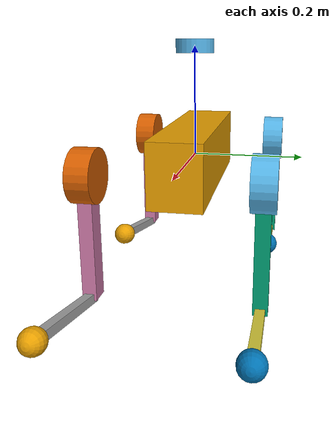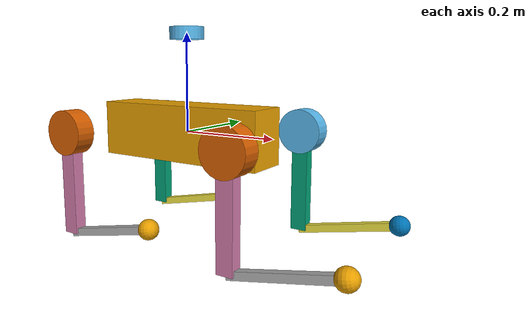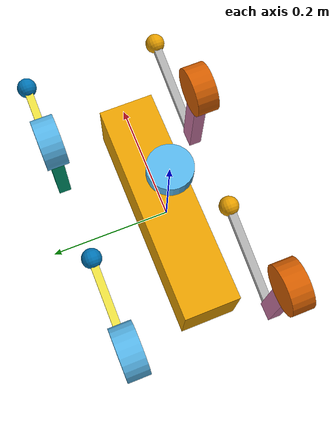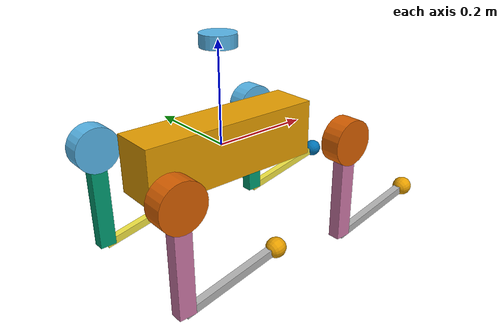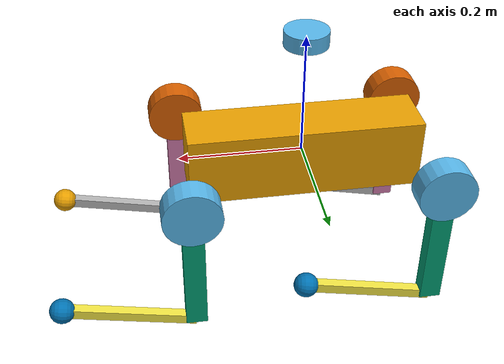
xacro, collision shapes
<?xml version="1.0"?>
<robot name="go2" xmlns:xacro="http://www.ros.org/wiki/xacro">

    <xacro:include filename="$(find unitree_description)/urdf/const.xacro"/>
    <xacro:include filename="$(find unitree_description)/urdf/leg.xacro"/>
    <xacro:include filename="$(find unitree_description)/urdf/lidar.xacro"/>

    <link name="trunk">
        <visual>
            <geometry>
                <mesh
                    filename="package://unitree_description/meshes/trunk.dae"
                    scale="1 1 1"/>
            </geometry>
        </visual>

        <collision>
            <geometry>
                <box size="${trunk_length} ${trunk_width} ${trunk_height}"/>
            </geometry>
        </collision>

        <inertial>
            <origin xyz="0.021112 0.0 -0.005366" rpy="0 0 0"/>
            <mass value="${trunk_mass}"/>
            <inertia
                ixx="0.02448"
                ixy="0.00012166"
                ixz="0.0014849"
                iyy="0.098077"
                iyz="-3.12E-05"
                izz="0.107"/>
        </inertial>
    </link>

    <xacro:leg name="FL" mirror="1" front_hind="1"/>
    <xacro:leg name="FR" mirror="-1" front_hind="1"/>
    <xacro:leg name="RL" mirror="1" front_hind="-1"/>
    <xacro:leg name="RR" mirror="-1" front_hind="-1"/>

    <xacro:lidar_sensor/>
    <ros2_control name="Go2System" type="system">
        <hardware>
            <plugin>gz_ros2_control/GazeboSimSystem</plugin>
        </hardware>

        <joint name="FL_hip_joint">
            <command_interface name="position"/>
            <state_interface name="position"/>
        </joint>
        <joint name="FL_upper_leg_joint">
            <command_interface name="position"/>
            <state_interface name="position"/>
        </joint>
        <joint name="FL_lower_leg_joint">
            <command_interface name="position"/>
            <state_interface name="position"/>
        </joint>

        <joint name="FR_hip_joint">
            <command_interface name="position"/>
            <state_interface name="position"/>
        </joint>
        <joint name="FR_upper_leg_joint">
            <command_interface name="position"/>
            <state_interface name="position"/>
        </joint>
        <joint name="FR_lower_leg_joint">
            <command_interface name="position"/>
            <state_interface name="position"/>
        </joint>

        <joint name="RL_hip_joint">
            <command_interface name="position"/>
            <state_interface name="position"/>
        </joint>
        <joint name="RL_upper_leg_joint">
            <command_interface name="position"/>
            <state_interface name="position"/>
        </joint>
        <joint name="RL_lower_leg_joint">
            <command_interface name="position"/>
            <state_interface name="position"/>
        </joint>

        <joint name="RR_hip_joint">
            <command_interface name="position"/>
            <state_interface name="position"/>
        </joint>
        <joint name="RR_upper_leg_joint">
            <command_interface name="position"/>
            <state_interface name="position"/>
        </joint>
        <joint name="RR_lower_leg_joint">
            <command_interface name="position"/>
            <state_interface name="position"/>
        </joint>
    </ros2_control>
<gazebo>
    <plugin filename="libgz_ros2_control-system.so"
            name="gz_ros2_control::GazeboSimROS2ControlPlugin">
        <parameters>$(find unitree_description)/config/controllers.yaml</parameters>
    </plugin>
</gazebo>
<gazebo>
    <plugin filename="gz-sim-odometry-publisher-system"
            name="gz::sim::systems::OdometryPublisher">
        <odom_frame>odom</odom_frame>
        <robot_base_frame>trunk</robot_base_frame>
        <odom_publish_frequency>30</odom_publish_frequency>
        <dimensions>3</dimensions>
    </plugin>
</gazebo>
</robot>

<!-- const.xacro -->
<robot xmlns:xacro="http://www.ros.org/wiki/xacro">

    <xacro:property name="PI" value="3.1415926535897931"/>

    <!-- Abmessungen -->
    <xacro:property name="trunk_width" value="0.0935"/>
    <xacro:property name="trunk_length" value="0.3762"/>
    <xacro:property name="trunk_height" value="0.114"/>

    <xacro:property name="hip_radius" value="0.046"/>
    <xacro:property name="hip_length" value="0.04"/>

    <xacro:property name="thigh_width" value="0.0245"/>
    <xacro:property name="thigh_height" value="0.034"/>

    <xacro:property name="calf_width" value="0.016"/>
    <xacro:property name="calf_height" value="0.016"/>

    <xacro:property name="foot_radius" value="0.02"/>

    <!-- Bein-Geometrie -->
    <xacro:property name="thigh_offset" value="0.0955"/>
    <xacro:property name="thigh_length" value="0.213"/>
    <xacro:property name="calf_length" value="0.213"/>

    <xacro:property name="leg_offset_x" value="0.1934"/>
    <xacro:property name="leg_offset_y" value="0.0465"/>

    <xacro:property name="hip_offset" value="0.0955"/>

    <!-- Dynamik -->
    <xacro:property name="damping" value="0.01"/>
    <xacro:property name="friction" value="0.2"/>

    <!-- Gelenkgrenzen -->
    <xacro:property name="hip_position_max" value="1.0472"/>
    <xacro:property name="hip_position_min" value="-1.0472"/>
    <xacro:property name="hip_velocity_max" value="30.1"/>
    <xacro:property name="hip_torque_max" value="23.7"/>

    <xacro:property name="thigh_position_max" value="3.4907"/>
    <xacro:property name="thigh_position_min" value="-1.5708"/>
    <xacro:property name="thigh_velocity_max" value="30.1"/>
    <xacro:property name="thigh_torque_max" value="23.7"/>

    <xacro:property name="calf_position_max" value="-0.83776"/>
    <xacro:property name="calf_position_min" value="-2.7227"/>
    <xacro:property name="calf_velocity_max" value="20.06"/>
    <xacro:property name="calf_torque_max" value="35.55"/>

    <!-- Massen -->
    <xacro:property name="trunk_mass" value="6.921"/>
    <xacro:property name="hip_mass" value="0.678"/>
    <xacro:property name="thigh_mass" value="1.152"/>
    <xacro:property name="calf_mass" value="0.154"/>
    <xacro:property name="foot_mass" value="0.06"/>

    <!-- Trunk: Schwerpunkt und Trägheitsmomente -->
    <xacro:property name="trunk_com_x" value="0.021112"/>
    <xacro:property name="trunk_com_y" value="0.0"/>
    <xacro:property name="trunk_com_z" value="-0.005366"/>

    <xacro:property name="trunk_ixx" value="0.02448"/>
    <xacro:property name="trunk_ixy" value="0.00012166"/>
    <xacro:property name="trunk_ixz" value="0.0014849"/>
    <xacro:property name="trunk_iyy" value="0.098077"/>
    <xacro:property name="trunk_iyz" value="-3.12E-05"/>
    <xacro:property name="trunk_izz" value="0.107"/>

    <!-- Hüfte: Schwerpunkt und Trägheitsmomente -->
    <xacro:property name="hip_com_x" value="-0.0054"/>
    <xacro:property name="hip_com_y" value="0.00194"/>
    <xacro:property name="hip_com_z" value="-0.000105"/>

    <xacro:property name="hip_ixx" value="0.00048"/>
    <xacro:property name="hip_ixy" value="-3.01E-06"/>
    <xacro:property name="hip_ixz" value="1.11E-06"/>
    <xacro:property name="hip_iyy" value="0.000884"/>
    <xacro:property name="hip_iyz" value="-1.42E-06"/>
    <xacro:property name="hip_izz" value="0.000596"/>

    <!-- Oberschenkel: Schwerpunkt und Trägheitsmomente -->
    <xacro:property name="thigh_com_x" value="-0.00374"/>
    <xacro:property name="thigh_com_y" value="-0.0223"/>
    <xacro:property name="thigh_com_z" value="-0.0327"/>

    <xacro:property name="thigh_ixx" value="0.00584"/>
    <xacro:property name="thigh_ixy" value="8.72E-05"/>
    <xacro:property name="thigh_ixz" value="-0.000289"/>
    <xacro:property name="thigh_iyy" value="0.0058"/>
    <xacro:property name="thigh_iyz" value="0.000808"/>
    <xacro:property name="thigh_izz" value="0.00103"/>

    <!-- Unterschenkel: Schwerpunkt und Trägheitsmomente -->
    <xacro:property name="calf_com_x" value="0.00548"/>
    <xacro:property name="calf_com_y" value="-0.000975"/>
    <xacro:property name="calf_com_z" value="-0.115"/>

    <xacro:property name="calf_ixx" value="0.00108"/>
    <xacro:property name="calf_ixy" value="3.4E-07"/>
    <xacro:property name="calf_ixz" value="1.72E-05"/>
    <xacro:property name="calf_iyy" value="0.0011"/>
    <xacro:property name="calf_iyz" value="8.28E-06"/>
    <xacro:property name="calf_izz" value="3.29E-05"/>

</robot>

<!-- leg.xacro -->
<robot xmlns:xacro="http://www.ros.org/wiki/xacro">

    <xacro:macro name="leg" params="name mirror front_hind">

        <joint name="${name}_hip_joint" type="revolute">
            <origin xyz="${leg_offset_x * front_hind} ${leg_offset_y * mirror} 0"
                    rpy="0 0 0"/>
            <parent link="trunk"/>
            <child link="${name}_hip_link"/>
            <axis xyz="1 0 0"/>
            <dynamics damping="${damping}" friction="${friction}"/>
            <limit effort="${hip_torque_max}"
                   velocity="${hip_velocity_max}"
                   lower="${hip_position_min}"
                   upper="${hip_position_max}"/>
        </joint>

        <link name="${name}_hip_link">
            <visual>
                <geometry>
                    <mesh filename="package://unitree_description/meshes/hip.dae"
                          scale="1 1 1"/>
                </geometry>
            </visual>

            <collision>
                <origin rpy="${PI/2.0} 0 0"
                        xyz="0 ${hip_offset * mirror} 0"/>
                <geometry>
                    <cylinder length="${hip_length}"
                              radius="${hip_radius}"/>
                </geometry>
            </collision>

            <inertial>
                <origin xyz="${hip_com_x * front_hind} ${hip_com_y * mirror} ${hip_com_z}"
                        rpy="0 0 0"/>
                <mass value="${hip_mass}"/>
                <inertia
                    ixx="${hip_ixx}"
                    ixy="${hip_ixy * mirror * front_hind}"
                    ixz="${hip_ixz * front_hind}"
                    iyy="${hip_iyy}"
                    iyz="${hip_iyz * mirror}"
                    izz="${hip_izz}"/>
            </inertial>
        </link>

        <joint name="${name}_upper_leg_joint" type="revolute">
            <origin xyz="0 ${thigh_offset * mirror} 0"
                    rpy="0 0 0"/>
            <parent link="${name}_hip_link"/>
            <child link="${name}_upper_leg_link"/>
            <axis xyz="0 1 0"/>
            <dynamics damping="${damping}" friction="${friction}"/>
            <limit effort="${thigh_torque_max}"
                   velocity="${thigh_velocity_max}"
                   lower="${thigh_position_min}"
                   upper="${thigh_position_max}"/>
        </joint>

        <link name="${name}_upper_leg_link">
            <visual>
                <geometry>
                    <mesh filename="package://unitree_description/meshes/${'thigh.dae' if mirror == 1 else 'thigh_mirror.dae'}"
                          scale="1 1 1"/>
                </geometry>
            </visual>

            <collision>
                <origin rpy="0 ${PI/2.0} 0"
                        xyz="0 0 ${-thigh_length/2.0}"/>
                <geometry>
                    <box size="${thigh_length} ${thigh_width} ${thigh_height}"/>
                </geometry>
            </collision>

            <inertial>
                <origin xyz="${thigh_com_x} ${thigh_com_y * mirror} ${thigh_com_z}"
                        rpy="0 0 0"/>
                <mass value="${thigh_mass}"/>
                <inertia
                    ixx="${thigh_ixx}"
                    ixy="${thigh_ixy * mirror}"
                    ixz="${thigh_ixz}"
                    iyy="${thigh_iyy}"
                    iyz="${thigh_iyz * mirror}"
                    izz="${thigh_izz}"/>
            </inertial>
        </link>

        <joint name="${name}_lower_leg_joint" type="revolute">
            <origin xyz="0 0 ${-thigh_length}"
                    rpy="0 0 0"/>
            <parent link="${name}_upper_leg_link"/>
            <child link="${name}_lower_leg_link"/>
            <axis xyz="0 1 0"/>
            <dynamics damping="${damping}" friction="${friction}"/>
            <limit effort="${calf_torque_max}"
                   velocity="${calf_velocity_max}"
                   lower="${calf_position_min}"
                   upper="${calf_position_max}"/>
        </joint>

        <link name="${name}_lower_leg_link">
            <visual>
                <geometry>
                    <mesh filename="package://unitree_description/meshes/calf.dae"
                          scale="1 1 1"/>
                </geometry>
            </visual>

            <collision>
                <origin rpy="0 ${PI/2.0} 0"
                        xyz="0 0 ${-calf_length/2.0}"/>
                <geometry>
                    <box size="${calf_length} ${calf_width} ${calf_height}"/>
                </geometry>
            </collision>

            <inertial>
                <origin xyz="${calf_com_x} ${calf_com_y} ${calf_com_z}"
                        rpy="0 0 0"/>
                <mass value="${calf_mass}"/>
                <inertia
                    ixx="${calf_ixx}"
                    ixy="${calf_ixy}"
                    ixz="${calf_ixz}"
                    iyy="${calf_iyy}"
                    iyz="${calf_iyz}"
                    izz="${calf_izz}"/>
            </inertial>
        </link>

        <joint name="${name}_foot_joint" type="fixed">
            <origin xyz="0 0 ${-calf_length}"
                    rpy="0 0 0"/>
            <parent link="${name}_lower_leg_link"/>
            <child link="${name}_foot_link"/>
        </joint>

        <link name="${name}_foot_link">
            <visual>
                <geometry>
                    <sphere radius="${foot_radius - 0.01}"/>
                </geometry>
            </visual>

            <collision>
                <geometry>
                    <sphere radius="${foot_radius}"/>
                </geometry>
            </collision>

            <inertial>
                <origin xyz="0 0 0" rpy="0 0 0"/>
                <mass value="${foot_mass}"/>
                <inertia
                    ixx="${(2*foot_mass)/5.0*(foot_radius*foot_radius)}"
                    ixy="0"
                    ixz="0"
                    iyy="${(2*foot_mass)/5.0*(foot_radius*foot_radius)}"
                    iyz="0"
                    izz="${(2*foot_mass)/5.0*(foot_radius*foot_radius)}"/>
            </inertial>
        </link>

    </xacro:macro>

</robot>

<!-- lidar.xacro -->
<robot xmlns:xacro="http://www.ros.org/wiki/xacro">

  <xacro:macro name="lidar_sensor">

    <link name="lidar_link">
      <visual>
        <geometry>
          <cylinder radius="0.035" length="0.025"/>
        </geometry>
      </visual>

      <collision>
        <geometry>
          <cylinder radius="0.035" length="0.025"/>
        </geometry>
      </collision>
    </link>

    <joint name="lidar_joint" type="fixed">
      <parent link="trunk"/>
      <child link="lidar_link"/>
      <origin xyz="0 0 0.20" rpy="0 0 0"/>
    </joint>

    <gazebo reference="lidar_link">
      <sensor name="lidar" type="gpu_lidar">
          <gz_frame_id>lidar_link</gz_frame_id>
        <pose relative_to="lidar_link">0 0 0 0 0 0</pose>

        <topic>/scan</topic>

        <update_rate>10</update_rate>

        <ray>
          <scan>
            <horizontal>
              <samples>360</samples>
              <resolution>1</resolution>
              <min_angle>-3.14159</min_angle>
              <max_angle>3.14159</max_angle>
            </horizontal>
            <vertical>
              <samples>1</samples>
              <resolution>1</resolution>
              <min_angle>0</min_angle>
              <max_angle>0</max_angle>
            </vertical>
          </scan>

          <range>
            <min>0.1</min>
            <max>20.0</max>
            <resolution>0.01</resolution>
          </range>
        </ray>
      </sensor>
    </gazebo>

  </xacro:macro>

</robot>
